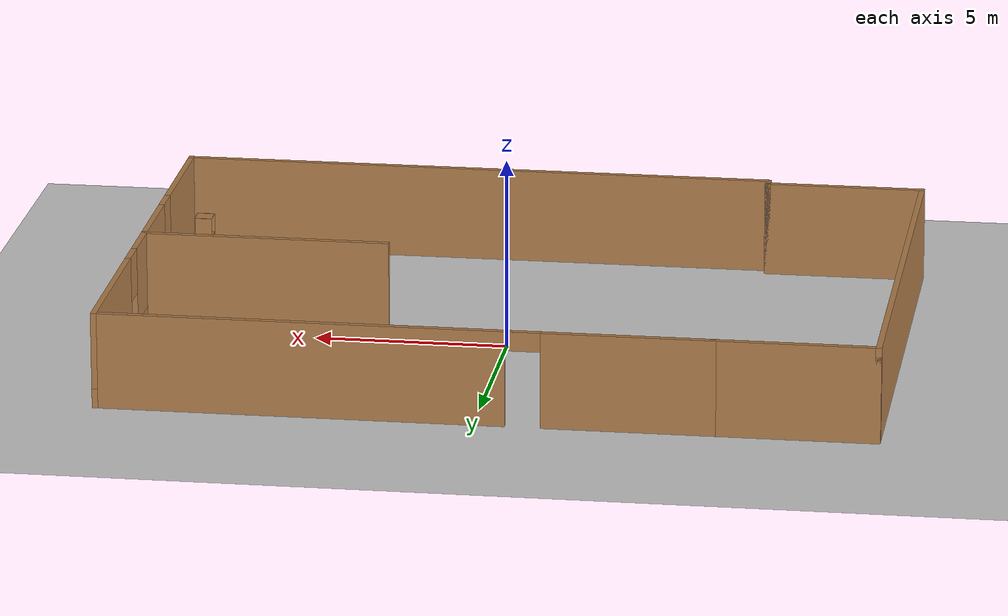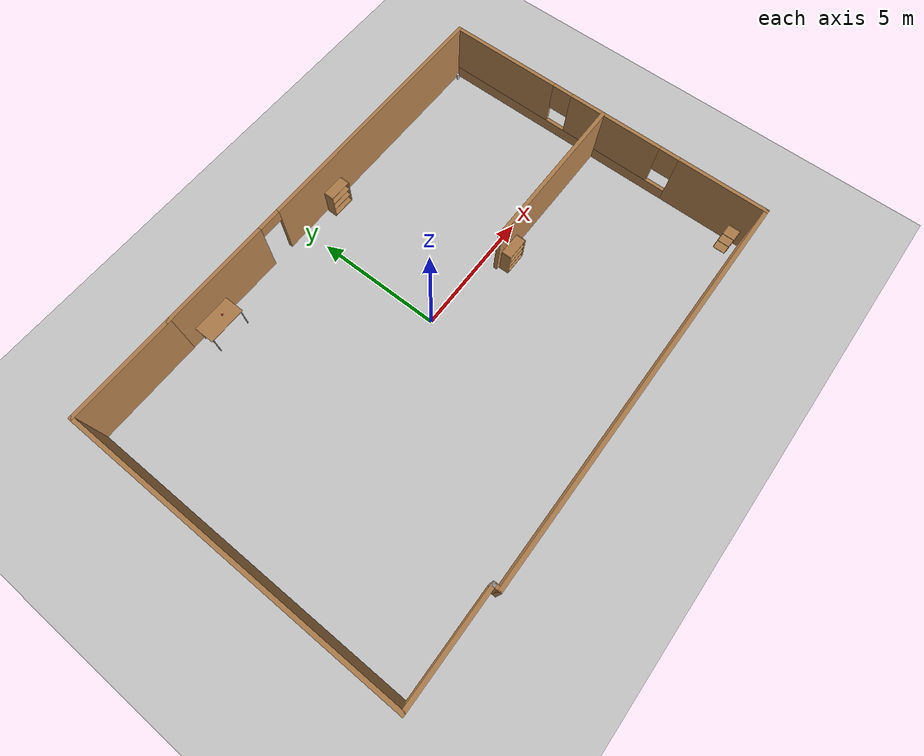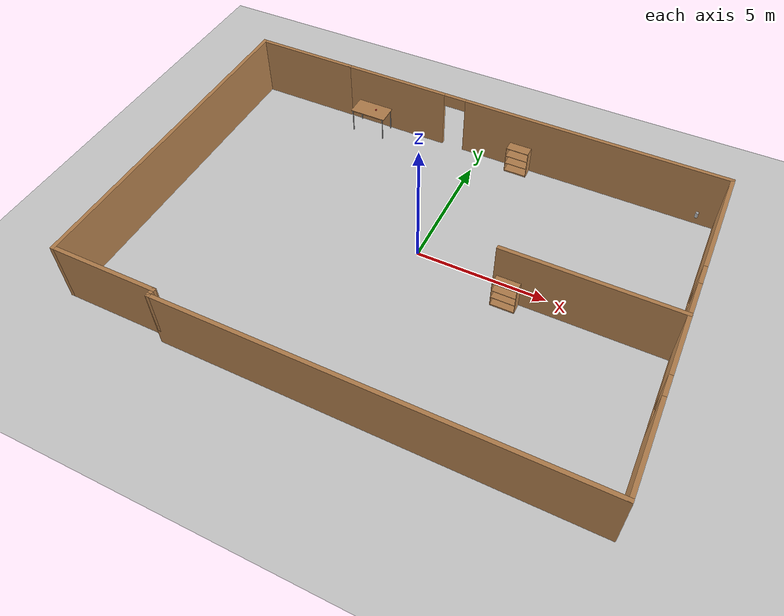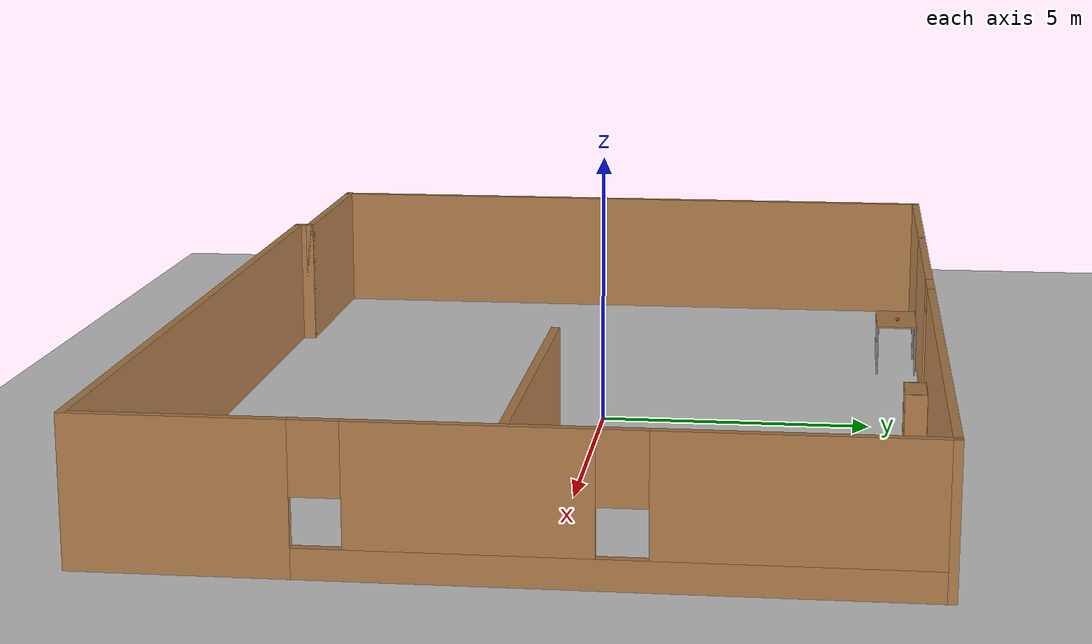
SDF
<sdf version="1.7">
 <world name="default">
  <light name="sun" type="directional">
   <pose>0 0 10 0 -0 0</pose>
   <diffuse>0.8 0.8 0.8 1</diffuse>
   <specular>0.2 0.2 0.2 1</specular>
   <attenuation>
    <range>1000</range>
    <constant>0.9</constant>
    <linear>0.01</linear>
    <quadratic>0.001</quadratic>
   </attenuation>
   <direction>-0.5 0.1 -0.9</direction>
   <spot><inner_angle>0</inner_angle><outer_angle>0</outer_angle><falloff>0</falloff></spot>
  </light>
  <model name="ground_plane">
   <static>1</static>
   <link name="link">
    <collision name="collision">
     <geometry><plane><normal>0 0 1</normal><size>100 100</size></plane></geometry>
     <surface>
      <contact><collide_bitmask>65535</collide_bitmask></contact>
      <friction><ode><mu>100</mu><mu2>50</mu2></ode></friction>
     </surface>
    </collision>
    <visual name="visual">
     <cast_shadows>0</cast_shadows>
     <geometry><plane><normal>0 0 1</normal><size>100 100</size></plane></geometry>
     <material>
      <script><uri>file://media/materials/scripts/gazebo.material</uri><name>Gazebo/Grey</name></script>
     </material>
    </visual>
   </link>
  </model>
  <gravity>0 0 -9.8</gravity>
  <magnetic_field>6e-06 2.3e-05 -4.2e-05</magnetic_field>
  <atmosphere type="adiabatic"/>
  <physics type="ode">
   <max_step_size>0.001</max_step_size>
   <real_time_factor>1</real_time_factor>
   <real_time_update_rate>1000</real_time_update_rate>
  </physics>
  <scene><ambient>0.4 0.4 0.4 1</ambient><background>0.7 0.7 0.7 1</background><shadows>1</shadows></scene>
  <spherical_coordinates>
   <surface_model>EARTH_WGS84</surface_model>
   <latitude_deg>0</latitude_deg>
   <longitude_deg>0</longitude_deg>
   <elevation>0</elevation>
   <heading_deg>0</heading_deg>
  </spherical_coordinates>
  <model name="room2">
   <pose>-0.266014 -0.572927 0 0 -0 0</pose>
   <link name="Wall_0">
    <collision name="Wall_0_Collision">
     <geometry><box><size>15.75 0.15 2.5</size></box></geometry>
     <pose>0 0 1.25 0 -0 0</pose>
    </collision>
    <visual name="Wall_0_Visual">
     <pose>0 0 1.25 0 -0 0</pose>
     <geometry><box><size>15.75 0.15 2.5</size></box></geometry>
     <material>
      <script><uri>file://media/materials/scripts/gazebo.material</uri><name>Gazebo/Wood</name></script>
      <ambient>1 1 1 1</ambient>
     </material>
     <meta><layer>0</layer></meta>
    </visual>
    <pose>2.05 -6.675 0 0 -0 0</pose>
   </link>
   <link name="Wall_1">
    <pose>9.85 0 0 0 -0 1.5708</pose>
    <visual name="Wall_1_Visual_0">
     <pose>-4.97454 0 1.25 0 -0 0</pose>
     <geometry><box><size>3.55091 0.15 2.5</size></box></geometry>
     <material>
      <script><uri>file://media/materials/scripts/gazebo.material</uri><name>Gazebo/Wood</name></script>
      <ambient>1 1 1 1</ambient>
     </material>
     <meta><layer>0</layer></meta>
    </visual>
    <collision name="Wall_1_Collision_0">
     <geometry><box><size>3.55091 0.15 2.5</size></box></geometry>
     <pose>-4.97454 0 1.25 0 -0 0</pose>
    </collision>
    <visual name="Wall_1_Visual_1">
     <pose>1.77546 0 0.25 0 -0 0</pose>
     <geometry><box><size>9.94909 0.15 0.5</size></box></geometry>
     <material>
      <script><uri>file://media/materials/scripts/gazebo.material</uri><name>Gazebo/Wood</name></script>
      <ambient>1 1 1 1</ambient>
     </material>
     <meta><layer>0</layer></meta>
    </visual>
    <collision name="Wall_1_Collision_1">
     <geometry><box><size>9.94909 0.15 0.5</size></box></geometry>
     <pose>1.77546 0 0.25 0 -0 0</pose>
    </collision>
    <visual name="Wall_1_Visual_2">
     <pose>-0.489522 0 1.5 0 -0 0</pose>
     <geometry><box><size>3.81913 0.15 2</size></box></geometry>
     <material>
      <script><uri>file://media/materials/scripts/gazebo.material</uri><name>Gazebo/Wood</name></script>
      <ambient>1 1 1 1</ambient>
     </material>
     <meta><layer>0</layer></meta>
    </visual>
    <collision name="Wall_1_Collision_2">
     <geometry><box><size>3.81913 0.15 2</size></box></geometry>
     <pose>-0.489522 0 1.5 0 -0 0</pose>
    </collision>
    <visual name="Wall_1_Visual_3">
     <pose>4.48502 0 1.5 0 -0 0</pose>
     <geometry><box><size>4.52996 0.15 2</size></box></geometry>
     <material>
      <script><uri>file://media/materials/scripts/gazebo.material</uri><name>Gazebo/Wood</name></script>
      <ambient>1 1 1 1</ambient>
     </material>
     <meta><layer>0</layer></meta>
    </visual>
    <collision name="Wall_1_Collision_3">
     <geometry><box><size>4.52996 0.15 2</size></box></geometry>
     <pose>4.48502 0 1.5 0 -0 0</pose>
    </collision>
    <visual name="Wall_1_Visual_4">
     <pose>-2.79908 0 1.9 0 -0 0</pose>
     <geometry><box><size>0.8 0.15 1.2</size></box></geometry>
     <material>
      <script><uri>file://media/materials/scripts/gazebo.material</uri><name>Gazebo/Wood</name></script>
      <ambient>1 1 1 1</ambient>
     </material>
     <meta><layer>0</layer></meta>
    </visual>
    <collision name="Wall_1_Collision_4">
     <geometry><box><size>0.8 0.15 1.2</size></box></geometry>
     <pose>-2.79908 0 1.9 0 -0 0</pose>
    </collision>
    <visual name="Wall_1_Visual_5">
     <pose>1.82004 0 1.9 0 -0 0</pose>
     <geometry><box><size>0.8 0.15 1.2</size></box></geometry>
     <material>
      <script><uri>file://media/materials/scripts/gazebo.material</uri><name>Gazebo/Wood</name></script>
      <ambient>1 1 1 1</ambient>
     </material>
     <meta><layer>0</layer></meta>
    </visual>
    <collision name="Wall_1_Collision_5">
     <geometry><box><size>0.8 0.15 1.2</size></box></geometry>
     <pose>1.82004 0 1.9 0 -0 0</pose>
    </collision>
   </link>
   <link name="Wall_10">
    <collision name="Wall_10_Collision">
     <geometry><box><size>0.4 0.15 2.5</size></box></geometry>
     <pose>0 0 1.25 0 -0 0</pose>
    </collision>
    <visual name="Wall_10_Visual">
     <pose>0 0 1.25 0 -0 0</pose>
     <geometry><box><size>0.4 0.15 2.5</size></box></geometry>
     <material>
      <script><uri>file://media/materials/scripts/gazebo.material</uri><name>Gazebo/Wood</name></script>
      <ambient>1 1 1 1</ambient>
     </material>
     <meta><layer>0</layer></meta>
    </visual>
    <pose>-5.75 -6.55 0 0 -0 -1.5708</pose>
   </link>
   <link name="Wall_16">
    <collision name="Wall_16_Collision">
     <geometry><box><size>6.5 0.15 2.5</size></box></geometry>
     <pose>0 0 1.25 0 -0 0</pose>
    </collision>
    <visual name="Wall_16_Visual">
     <pose>0 0 1.25 0 -0 0</pose>
     <geometry><box><size>6.5 0.15 2.5</size></box></geometry>
     <material>
      <script><uri>file://media/materials/scripts/gazebo.material</uri><name>Gazebo/Wood</name></script>
      <ambient>1 1 1 1</ambient>
     </material>
     <meta><layer>0</layer></meta>
    </visual>
    <pose>6.66894 0.045807 0 0 -0 3.14159</pose>
   </link>
   <link name="Wall_2">
    <pose>2.05 6.675 0 0 -0 3.14159</pose>
    <visual name="Wall_2_Visual_0">
     <pose>-2.645 0 1.25 0 -0 0</pose>
     <geometry><box><size>10.46 0.15 2.5</size></box></geometry>
     <material>
      <script><uri>file://media/materials/scripts/gazebo.material</uri><name>Gazebo/Wood</name></script>
      <ambient>1 1 1 1</ambient>
     </material>
     <meta><layer>0</layer></meta>
    </visual>
    <collision name="Wall_2_Collision_0">
     <geometry><box><size>10.46 0.15 2.5</size></box></geometry>
     <pose>-2.645 0 1.25 0 -0 0</pose>
    </collision>
    <visual name="Wall_2_Visual_1">
     <pose>5.68 0 1.25 0 -0 0</pose>
     <geometry><box><size>4.39 0.15 2.5</size></box></geometry>
     <material>
      <script><uri>file://media/materials/scripts/gazebo.material</uri><name>Gazebo/Wood</name></script>
      <ambient>1 1 1 1</ambient>
     </material>
     <meta><layer>0</layer></meta>
    </visual>
    <collision name="Wall_2_Collision_1">
     <geometry><box><size>4.39 0.15 2.5</size></box></geometry>
     <pose>5.68 0 1.25 0 -0 0</pose>
    </collision>
    <visual name="Wall_2_Visual_2">
     <pose>3.035 0 2.25 0 -0 0</pose>
     <geometry><box><size>0.9 0.15 0.5</size></box></geometry>
     <material>
      <script><uri>file://media/materials/scripts/gazebo.material</uri><name>Gazebo/Wood</name></script>
      <ambient>1 1 1 1</ambient>
     </material>
     <meta><layer>0</layer></meta>
    </visual>
    <collision name="Wall_2_Collision_2">
     <geometry><box><size>0.9 0.15 0.5</size></box></geometry>
     <pose>3.035 0 2.25 0 -0 0</pose>
    </collision>
   </link>
   <link name="Wall_6">
    <collision name="Wall_6_Collision">
     <geometry><box><size>4.25 0.15 2.5</size></box></geometry>
     <pose>0 0 1.25 0 -0 0</pose>
    </collision>
    <visual name="Wall_6_Visual">
     <pose>0 0 1.25 0 -0 0</pose>
     <geometry><box><size>4.25 0.15 2.5</size></box></geometry>
     <material>
      <script><uri>file://media/materials/scripts/gazebo.material</uri><name>Gazebo/Wood</name></script>
      <ambient>1 1 1 1</ambient>
     </material>
     <meta><layer>0</layer></meta>
    </visual>
    <pose>-7.8 6.675 0 0 -0 3.14159</pose>
   </link>
   <link name="Wall_7">
    <collision name="Wall_7_Collision">
     <geometry><box><size>13.25 0.15 2.5</size></box></geometry>
     <pose>0 0 1.25 0 -0 0</pose>
    </collision>
    <visual name="Wall_7_Visual">
     <pose>0 0 1.25 0 -0 0</pose>
     <geometry><box><size>13.25 0.15 2.5</size></box></geometry>
     <material>
      <script><uri>file://media/materials/scripts/gazebo.material</uri><name>Gazebo/Wood</name></script>
      <ambient>1 1 1 1</ambient>
     </material>
     <meta><layer>0</layer></meta>
    </visual>
    <pose>-9.85 0.125 0 0 -0 -1.5708</pose>
   </link>
   <link name="Wall_8">
    <collision name="Wall_8_Collision">
     <geometry><box><size>4.25 0.15 2.5</size></box></geometry>
     <pose>0 0 1.25 0 -0 0</pose>
    </collision>
    <visual name="Wall_8_Visual">
     <pose>0 0 1.25 0 -0 0</pose>
     <geometry><box><size>4.25 0.15 2.5</size></box></geometry>
     <material>
      <script><uri>file://media/materials/scripts/gazebo.material</uri><name>Gazebo/Wood</name></script>
      <ambient>1 1 1 1</ambient>
     </material>
     <meta><layer>0</layer></meta>
    </visual>
    <pose>-7.8 -6.425 0 0 -0 0</pose>
   </link>
   <link name="Wall_9">
    <collision name="Wall_9_Collision">
     <geometry><box><size>0.15 0.15 2.5</size></box></geometry>
     <pose>0 0 1.25 0 -0 0</pose>
    </collision>
    <visual name="Wall_9_Visual">
     <pose>0 0 1.25 0 -0 0</pose>
     <geometry><box><size>0.15 0.15 2.5</size></box></geometry>
     <material>
      <script><uri>file://media/materials/scripts/gazebo.material</uri><name>Gazebo/Grey</name></script>
      <ambient>1 1 1 1</ambient>
     </material>
     <meta><layer>0</layer></meta>
    </visual>
    <pose>-5.75 -6.425 0 0 -0 0</pose>
   </link>
   <static>1</static>
  </model>
  <model name="cabinet">
   <static>1</static>
   <link name="cabinet_bottom_plate">
    <inertial>
     <pose>0 0 -1 0 -0 0</pose>
     <inertia><ixx>2.05</ixx><ixy>0</ixy><ixz>0</ixz><iyy>2.05</iyy><iyz>0</iyz><izz>2.05</izz></inertia>
     <mass>25</mass>
    </inertial>
    <collision name="cabinet_bottom_plate_geom">
     <pose>0 0 0.01 0 -0 0</pose>
     <geometry><box><size>0.45 0.45 0.02</size></box></geometry>
    </collision>
    <visual name="cabinet_bottom_plate_geom_visual">
     <pose>0 0 0.01 0 -0 0</pose>
     <geometry><box><size>0.45 0.45 0.02</size></box></geometry>
     <material>
      <script><uri>file://media/materials/scripts/gazebo.material</uri><name>Gazebo/Wood</name></script>
     </material>
    </visual>
    <collision name="cabinet_bottom_plate_geom_cabinet_back_plate">
     <pose>0.235 0 0.51 0 -0 0</pose>
     <geometry><box><size>0.02 0.45 1.02</size></box></geometry>
    </collision>
    <visual name="cabinet_bottom_plate_geom_cabinet_back_plate_visual">
     <pose>0.235 0 0.51 0 -0 0</pose>
     <geometry><box><size>0.02 0.45 1.02</size></box></geometry>
     <material>
      <script><uri>file://media/materials/scripts/gazebo.material</uri><name>Gazebo/Wood</name></script>
     </material>
    </visual>
    <collision name="cabinet_bottom_plate_geom_cabinet_left_plate">
     <pose>0 0.235 0.51 0 -0 0</pose>
     <geometry><box><size>0.45 0.02 1.02</size></box></geometry>
    </collision>
    <visual name="cabinet_bottom_plate_geom_cabinet_left_plate_visual">
     <pose>0 0.235 0.51 0 -0 0</pose>
     <geometry><box><size>0.45 0.02 1.02</size></box></geometry>
     <material>
      <script><uri>file://media/materials/scripts/gazebo.material</uri><name>Gazebo/Wood</name></script>
     </material>
    </visual>
    <collision name="cabinet_bottom_plate_geom_cabinet_middle_plate">
     <pose>0 0 0.51 0 -0 0</pose>
     <geometry><box><size>0.45 0.45 0.02</size></box></geometry>
    </collision>
    <visual name="cabinet_bottom_plate_geom_cabinet_middle_plate_visual">
     <pose>0 0 0.51 0 -0 0</pose>
     <geometry><box><size>0.45 0.45 0.02</size></box></geometry>
     <material>
      <script><uri>file://media/materials/scripts/gazebo.material</uri><name>Gazebo/Wood</name></script>
     </material>
    </visual>
    <collision name="cabinet_bottom_plate_geom_cabinet_right_plate">
     <pose>0 -0.235 0.51 0 -0 0</pose>
     <geometry><box><size>0.45 0.02 1.02</size></box></geometry>
    </collision>
    <visual name="cabinet_bottom_plate_geom_cabinet_right_plate_visual">
     <pose>0 -0.235 0.51 0 -0 0</pose>
     <geometry><box><size>0.45 0.02 1.02</size></box></geometry>
     <material>
      <script><uri>file://media/materials/scripts/gazebo.material</uri><name>Gazebo/Wood</name></script>
     </material>
    </visual>
    <collision name="cabinet_bottom_plate_geom_cabinet_top_plate">
     <pose>0 0 1.01 0 -0 0</pose>
     <geometry><box><size>0.45 0.45 0.02</size></box></geometry>
    </collision>
    <visual name="cabinet_bottom_plate_geom_cabinet_top_plate_visual">
     <pose>0 0 1.01 0 -0 0</pose>
     <geometry><box><size>0.45 0.45 0.02</size></box></geometry>
     <material>
      <script><uri>file://media/materials/scripts/gazebo.material</uri><name>Gazebo/Wood</name></script>
     </material>
    </visual>
   </link>
   <pose>9.14713 -6.71902 0 0 -0 0</pose>
  </model>
  <model name="bookshelf">
   <static>1</static>
   <link name="link">
    <inertial><mass>1</mass></inertial>
    <collision name="back">
     <pose>0 0.005 0.6 0 -0 0</pose>
     <geometry><box><size>0.9 0.01 1.2</size></box></geometry>
    </collision>
    <visual name="visual1">
     <pose>0 0.005 0.6 0 -0 0</pose>
     <geometry><box><size>0.9 0.01 1.2</size></box></geometry>
     <material>
      <script><uri>file://media/materials/scripts/gazebo.material</uri><name>Gazebo/Wood</name></script>
     </material>
    </visual>
    <collision name="left_side">
     <pose>0.45 -0.195 0.6 0 -0 0</pose>
     <geometry><box><size>0.02 0.4 1.2</size></box></geometry>
    </collision>
    <visual name="visual2">
     <pose>0.45 -0.195 0.6 0 -0 0</pose>
     <geometry><box><size>0.02 0.4 1.2</size></box></geometry>
     <material>
      <script><uri>file://media/materials/scripts/gazebo.material</uri><name>Gazebo/Wood</name></script>
     </material>
    </visual>
    <collision name="right_side">
     <pose>-0.45 -0.195 0.6 0 -0 0</pose>
     <geometry><box><size>0.02 0.4 1.2</size></box></geometry>
    </collision>
    <visual name="visual3">
     <pose>-0.45 -0.195 0.6 0 -0 0</pose>
     <geometry><box><size>0.02 0.4 1.2</size></box></geometry>
     <material>
      <script><uri>file://media/materials/scripts/gazebo.material</uri><name>Gazebo/Wood</name></script>
     </material>
    </visual>
    <collision name="bottom">
     <pose>0 -0.195 0.03 0 -0 0</pose>
     <geometry><box><size>0.88 0.4 0.06</size></box></geometry>
    </collision>
    <visual name="visual4">
     <pose>0 -0.195 0.03 0 -0 0</pose>
     <geometry><box><size>0.88 0.4 0.06</size></box></geometry>
     <material>
      <script><uri>file://media/materials/scripts/gazebo.material</uri><name>Gazebo/Wood</name></script>
     </material>
    </visual>
    <collision name="top">
     <pose>0 -0.195 1.19 0 -0 0</pose>
     <geometry><box><size>0.88 0.4 0.02</size></box></geometry>
    </collision>
    <visual name="visual5">
     <pose>0 -0.195 1.19 0 -0 0</pose>
     <geometry><box><size>0.88 0.4 0.02</size></box></geometry>
     <material>
      <script><uri>file://media/materials/scripts/gazebo.material</uri><name>Gazebo/Wood</name></script>
     </material>
    </visual>
    <collision name="low_shelf">
     <pose>0 -0.195 0.43 0 -0 0</pose>
     <geometry><box><size>0.88 0.4 0.02</size></box></geometry>
    </collision>
    <visual name="visual6">
     <pose>0 -0.195 0.43 0 -0 0</pose>
     <geometry><box><size>0.88 0.4 0.02</size></box></geometry>
     <material>
      <script><uri>file://media/materials/scripts/gazebo.material</uri><name>Gazebo/Wood</name></script>
     </material>
    </visual>
    <collision name="high_shelf">
     <pose>0 -0.195 0.8 0 -0 0</pose>
     <geometry><box><size>0.88 0.4 0.02</size></box></geometry>
    </collision>
    <visual name="visual7">
     <pose>0 -0.195 0.8 0 -0 0</pose>
     <geometry><box><size>0.88 0.4 0.02</size></box></geometry>
     <material>
      <script><uri>file://media/materials/scripts/gazebo.material</uri><name>Gazebo/Wood</name></script>
     </material>
    </visual>
   </link>
   <pose>3.73213 -0.643875 0 0 -0 0</pose>
  </model>
  <model name="bookshelf_0">
   <static>1</static>
   <link name="link">
    <inertial><mass>1</mass></inertial>
    <collision name="back">
     <pose>0 0.005 0.6 0 -0 0</pose>
     <geometry><box><size>0.9 0.01 1.2</size></box></geometry>
    </collision>
    <visual name="visual1">
     <pose>0 0.005 0.6 0 -0 0</pose>
     <geometry><box><size>0.9 0.01 1.2</size></box></geometry>
     <material>
      <script><uri>file://media/materials/scripts/gazebo.material</uri><name>Gazebo/Wood</name></script>
     </material>
    </visual>
    <collision name="left_side">
     <pose>0.45 -0.195 0.6 0 -0 0</pose>
     <geometry><box><size>0.02 0.4 1.2</size></box></geometry>
    </collision>
    <visual name="visual2">
     <pose>0.45 -0.195 0.6 0 -0 0</pose>
     <geometry><box><size>0.02 0.4 1.2</size></box></geometry>
     <material>
      <script><uri>file://media/materials/scripts/gazebo.material</uri><name>Gazebo/Wood</name></script>
     </material>
    </visual>
    <collision name="right_side">
     <pose>-0.45 -0.195 0.6 0 -0 0</pose>
     <geometry><box><size>0.02 0.4 1.2</size></box></geometry>
    </collision>
    <visual name="visual3">
     <pose>-0.45 -0.195 0.6 0 -0 0</pose>
     <geometry><box><size>0.02 0.4 1.2</size></box></geometry>
     <material>
      <script><uri>file://media/materials/scripts/gazebo.material</uri><name>Gazebo/Wood</name></script>
     </material>
    </visual>
    <collision name="bottom">
     <pose>0 -0.195 0.03 0 -0 0</pose>
     <geometry><box><size>0.88 0.4 0.06</size></box></geometry>
    </collision>
    <visual name="visual4">
     <pose>0 -0.195 0.03 0 -0 0</pose>
     <geometry><box><size>0.88 0.4 0.06</size></box></geometry>
     <material>
      <script><uri>file://media/materials/scripts/gazebo.material</uri><name>Gazebo/Wood</name></script>
     </material>
    </visual>
    <collision name="top">
     <pose>0 -0.195 1.19 0 -0 0</pose>
     <geometry><box><size>0.88 0.4 0.02</size></box></geometry>
    </collision>
    <visual name="visual5">
     <pose>0 -0.195 1.19 0 -0 0</pose>
     <geometry><box><size>0.88 0.4 0.02</size></box></geometry>
     <material>
      <script><uri>file://media/materials/scripts/gazebo.material</uri><name>Gazebo/Wood</name></script>
     </material>
    </visual>
    <collision name="low_shelf">
     <pose>0 -0.195 0.43 0 -0 0</pose>
     <geometry><box><size>0.88 0.4 0.02</size></box></geometry>
    </collision>
    <visual name="visual6">
     <pose>0 -0.195 0.43 0 -0 0</pose>
     <geometry><box><size>0.88 0.4 0.02</size></box></geometry>
     <material>
      <script><uri>file://media/materials/scripts/gazebo.material</uri><name>Gazebo/Wood</name></script>
     </material>
    </visual>
    <collision name="high_shelf">
     <pose>0 -0.195 0.8 0 -0 0</pose>
     <geometry><box><size>0.88 0.4 0.02</size></box></geometry>
    </collision>
    <visual name="visual7">
     <pose>0 -0.195 0.8 0 -0 0</pose>
     <geometry><box><size>0.88 0.4 0.02</size></box></geometry>
     <material>
      <script><uri>file://media/materials/scripts/gazebo.material</uri><name>Gazebo/Wood</name></script>
     </material>
    </visual>
   </link>
   <pose>1.68312 5.97622 0 0 -0 0</pose>
  </model>
  <model name="table">
   <static>1</static>
   <link name="link">
    <collision name="surface">
     <pose>0 0 1 0 -0 0</pose>
     <geometry><box><size>1.5 0.8 0.03</size></box></geometry>
     <surface><friction><ode><mu>0.6</mu><mu2>0.6</mu2></ode></friction></surface>
    </collision>
    <visual name="visual1">
     <pose>0 0 1 0 -0 0</pose>
     <geometry><box><size>1.5 0.8 0.03</size></box></geometry>
     <material>
      <script><uri>file://media/materials/scripts/gazebo.material</uri><name>Gazebo/Wood</name></script>
     </material>
    </visual>
    <collision name="front_left_leg">
     <pose>0.68 0.38 0.5 0 -0 0</pose>
     <geometry><cylinder><radius>0.02</radius><length>1</length></cylinder></geometry>
    </collision>
    <visual name="front_left_leg">
     <pose>0.68 0.38 0.5 0 -0 0</pose>
     <geometry><cylinder><radius>0.02</radius><length>1</length></cylinder></geometry>
     <material>
      <script><uri>file://media/materials/scripts/gazebo.material</uri><name>Gazebo/Grey</name></script>
     </material>
    </visual>
    <collision name="front_right_leg">
     <pose>0.68 -0.38 0.5 0 -0 0</pose>
     <geometry><cylinder><radius>0.02</radius><length>1</length></cylinder></geometry>
    </collision>
    <visual name="front_right_leg">
     <pose>0.68 -0.38 0.5 0 -0 0</pose>
     <geometry><cylinder><radius>0.02</radius><length>1</length></cylinder></geometry>
     <material>
      <script><uri>file://media/materials/scripts/gazebo.material</uri><name>Gazebo/Grey</name></script>
     </material>
    </visual>
    <collision name="back_right_leg">
     <pose>-0.68 -0.38 0.5 0 -0 0</pose>
     <geometry><cylinder><radius>0.02</radius><length>1</length></cylinder></geometry>
    </collision>
    <visual name="back_right_leg">
     <pose>-0.68 -0.38 0.5 0 -0 0</pose>
     <geometry><cylinder><radius>0.02</radius><length>1</length></cylinder></geometry>
     <material>
      <script><uri>file://media/materials/scripts/gazebo.material</uri><name>Gazebo/Grey</name></script>
     </material>
    </visual>
    <collision name="back_left_leg">
     <pose>-0.68 0.38 0.5 0 -0 0</pose>
     <geometry><cylinder><radius>0.02</radius><length>1</length></cylinder></geometry>
    </collision>
    <visual name="back_left_leg">
     <pose>-0.68 0.38 0.5 0 -0 0</pose>
     <geometry><cylinder><radius>0.02</radius><length>1</length></cylinder></geometry>
     <material>
      <script><uri>file://media/materials/scripts/gazebo.material</uri><name>Gazebo/Grey</name></script>
     </material>
    </visual>
   </link>
   <pose>-4.77034 5.58526 0 0 -0 0</pose>
  </model>
  <model name="beer">
   <link name="link">
    <pose>0 0 0.115 0 -0 0</pose>
    <inertial>
     <mass>0.39</mass>
     <inertia><ixx>0.00058</ixx><ixy>0</ixy><ixz>0</ixz><iyy>0.00058</iyy><iyz>0</iyz><izz>0.00019</izz></inertia>
    </inertial>
    <collision name="collision">
     <geometry><cylinder><radius>0.055</radius><length>0.23</length></cylinder></geometry>
    </collision>
    <visual name="visual">
     <geometry><cylinder><radius>0.055</radius><length>0.23</length></cylinder></geometry>
     <material>
      <script>
       <uri>model://beer/materials/scripts</uri>
       <uri>model://beer/materials/textures</uri>
       <name>Beer/Diffuse</name>
      </script>
     </material>
    </visual>
   </link>
   <pose>8.81688 5.54746 0.775002 3.1e-05 4e-06 0.000502</pose>
  </model>
  <model name="cricket_ball">
   <link name="link">
    <pose>0 0 0.0375 0 -0 0</pose>
    <inertial>
     <mass>0.1467</mass>
     <inertia>
      <ixx>8.25187e-05</ixx>
      <ixy>0</ixy>
      <ixz>0</ixz>
      <iyy>8.25187e-05</iyy>
      <iyz>0</iyz>
      <izz>8.25187e-05</izz>
     </inertia>
    </inertial>
    <collision name="collision">
     <geometry><sphere><radius>0.0375</radius></sphere></geometry>
     <surface>
      <contact>
       <poissons_ratio>0.347</poissons_ratio>
       <elastic_modulus>8.8e+09</elastic_modulus>
       <ode><kp>100000</kp><kd>100</kd><max_vel>100</max_vel><min_depth>0.001</min_depth></ode>
      </contact>
      <friction>
       <torsional>
        <coefficient>1</coefficient>
        <use_patch_radius>0</use_patch_radius>
        <surface_radius>0.01</surface_radius>
       </torsional>
      </friction>
     </surface>
    </collision>
    <visual name="visual">
     <geometry><sphere><radius>0.0375</radius></sphere></geometry>
     <material>
      <script><uri>file://media/materials/scripts/gazebo.material</uri><name>Gazebo/Red</name></script>
     </material>
    </visual>
    <velocity_decay><linear>0</linear><angular>0.005</angular></velocity_decay>
   </link>
   <pose>-4.57477 5.61381 1.01399 0 -0 0</pose>
  </model>
  <plugin name="gazebo_ros_state" filename="libgazebo_ros_state.so">
   <ros><namespace>/gazebo</namespace></ros>
   <update_rate>1.0</update_rate>
  </plugin>
 </world>
</sdf>
